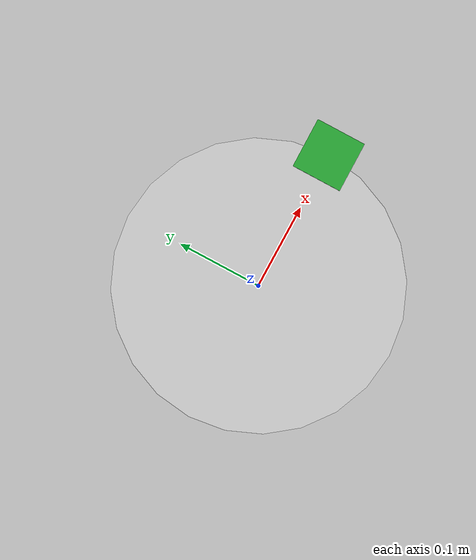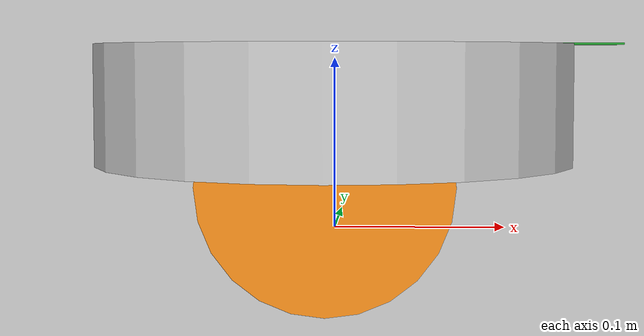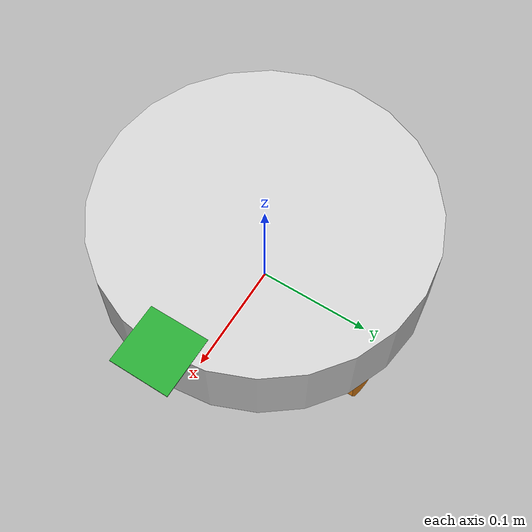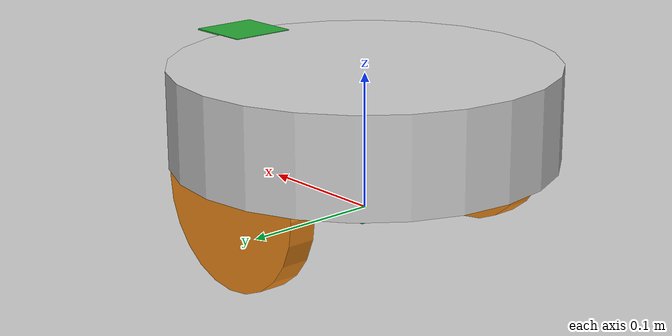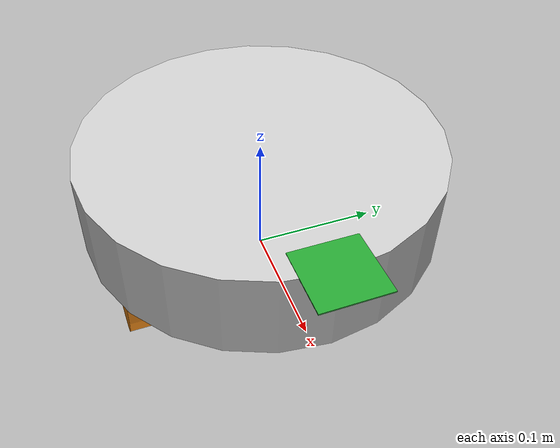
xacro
<?xml version="1.0"?>

<robot name="box_robot" xmlns:xacro="http://ros.org/wiki/xacro">

   <!-- Define a number of dimensions using properties -->
   <property name="torso_offset_x" value="0.0" />
   <property name="torso_offset_y" value="0.0" />
   <property name="torso_offset_z" value="0.23" /> <!--base_height/2+torso_height/2 -->

   <!-- Include all component files -->
   <xacro:include filename="$(find supergo_description)/urdf/supergobase/materials.urdf.xacro" />
   <xacro:include filename="$(find supergo_description)/urdf/supergobase/base.urdf.xacro" />
   <xacro:include filename="$(find supergo_description)/urdf/supergobase/torso.urdf.xacro" />

   <!-- Add the base and wheels -->
   <base name="base" color="Black"/>

   <!-- Attach the torso -->

  <link name="front_flag">
      <visual>
        <origin xyz="0 0 0" rpy="0 0 0" />
        <geometry>
          <box size="0.05 0.05 0.001" />
        </geometry>
        <material name="TransparentGreen" />
      </visual>
  </link>

  <joint name="front_point_flag" type="fixed">
    <origin xyz="0.14 0 ${base_length/2}" rpy="0 0 0" />
    <parent link="base_link"/>
    <child link="front_flag" />
  </joint>

</robot>

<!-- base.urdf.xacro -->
<robot name="base" xmlns:xacro="http://ros.org/wiki/xacro">

  <!-- Define a number of dimensions using properties -->
  <property name="base_length" value="0.07" />
  <property name="base_radius" value="0.14" />
  <property name="wheel_length" value="0.02" />
  <property name="wheel_radius" value="0.066" />
  <property name="wheel_offset_x" value="0.0" />
  <property name="wheel_offset_y" value="0.1125" />
  <property name="wheel_offset_z" value="-0.038" />

  <property name="PI" value="3.1415926" />

  <!-- define a wheel -->
  <macro name="wheel" params="suffix parent reflect color">
    <joint name="${parent}_${suffix}_wheel_joint" type="continuous">
      <axis xyz="0 0 1" />
      <limit effort="100" velocity="100"/>
      <safety_controller k_velocity="10" />
      <origin xyz="${wheel_offset_x} ${reflect*wheel_offset_y} ${wheel_offset_z}" rpy="${reflect*PI/2} 0 0" />
      <parent link="${parent}_link"/>
      <child link="${parent}_${suffix}_wheel_link"/>
    </joint>
    <link name="${parent}_${suffix}_wheel_link">
      <visual>
        <origin xyz="0 0 0" rpy="0 0 0" />
        <geometry>
          <cylinder radius="${wheel_radius}" length="${wheel_length}"/>
        </geometry>
        <material name="${color}" />
      </visual>
    </link>
  </macro>

  <!-- The base xacro macro -->
  <macro name="base" params="name color">
    <link name="${name}_link">

        <visual>
            <origin xyz="0 0 0" rpy="0 0 0"/>
            <geometry>
                <cylinder length="${base_length}" radius="${base_radius}"/>
            </geometry>
            <material name="iRobot/LightGrey"/>
        </visual>
        <collision>
            <origin xyz="0 0 0" rpy="0 0 0"/>
            <geometry>
                <cylinder length="${base_length}" radius="${base_radius}"/>
            </geometry>
        </collision>
    </link>
  </macro>

  <link name="base_footprint">
      <visual>
        <origin xyz="0 0 0" rpy="0 0 0" />
        <geometry>
          <box size="0.05 0.05 0.001" />
        </geometry>
        <material name="TransparentGreen" />
      </visual>
  </link>

  <joint name="base_joint" type="fixed">
    <origin xyz="0 0 ${base_length/2 - wheel_offset_z}" rpy="0 0 0" />
    <parent link="base_footprint"/>
    <child link="base_link" />
  </joint>

   <!-- Add the drive wheels -->
   <wheel parent="base" suffix="l" reflect="1" color="Orange"/>
   <wheel parent="base" suffix="r" reflect="-1" color="Orange"/>

</robot>
